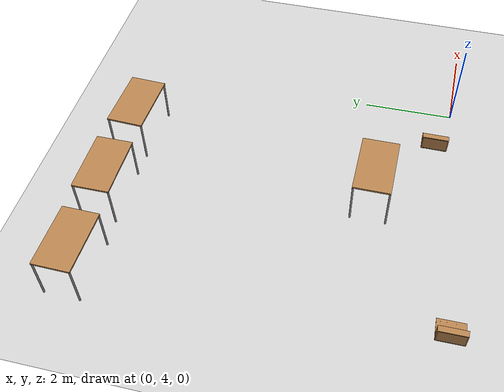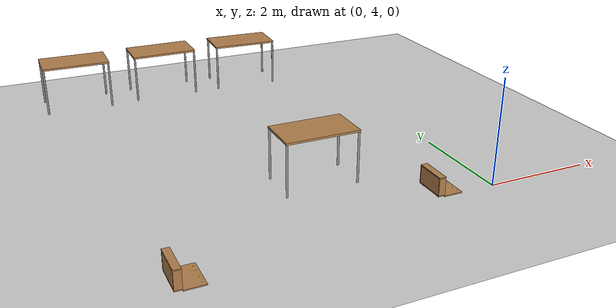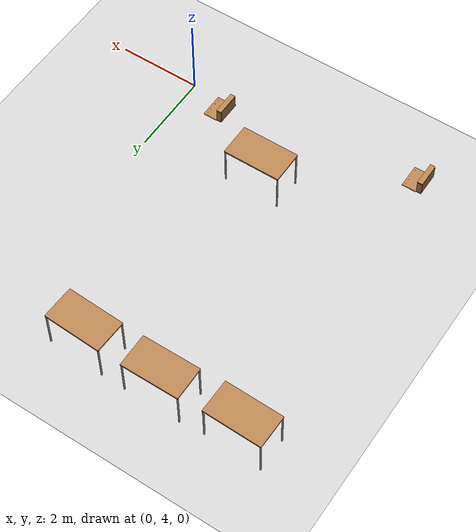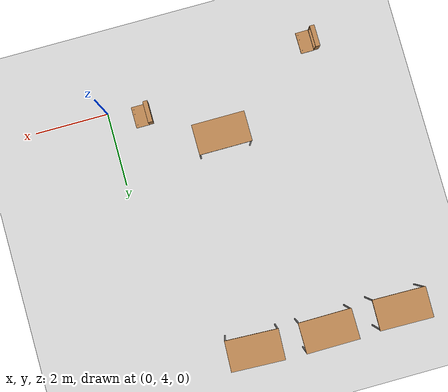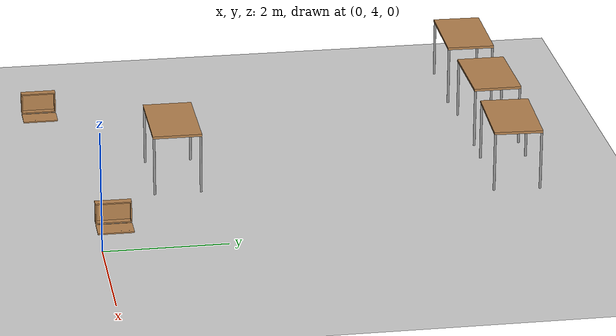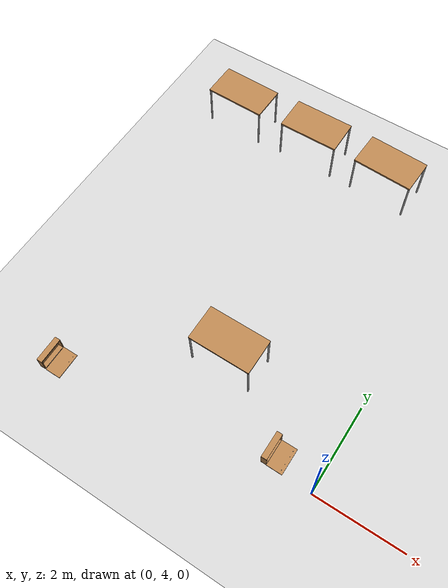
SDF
<sdf version="1.6">
 <world name="default">
  <model name="ground_plane">
   <static>1</static>
   <link name="link">
    <collision name="collision">
     <geometry><plane><normal>0 0 1</normal><size>100 100</size></plane></geometry>
     <surface><friction><ode><mu>100</mu><mu2>50</mu2></ode></friction></surface>
    </collision>
    <visual name="visual">
     <cast_shadows>0</cast_shadows>
     <geometry><plane><normal>0 0 1</normal><size>100 100</size></plane></geometry>
     <material>
      <script><uri>file://media/materials/scripts/gazebo.material</uri><name>Gazebo/Grey</name></script>
     </material>
    </visual>
   </link>
  </model>
  <model name="table_2">
   <static>0</static>
   <link name="link">
    <collision name="surface">
     <pose>0 0 1 0 -0 0</pose>
     <geometry><box><size>1.5 0.8 0.03</size></box></geometry>
     <surface><friction><ode><mu>0.6</mu><mu2>0.6</mu2></ode></friction></surface>
    </collision>
    <visual name="visual1">
     <pose>0 0 1 0 -0 0</pose>
     <geometry><box><size>1.4 0.8 0.04</size></box></geometry>
     <material>
      <script><uri>file://media/materials/scripts/gazebo.material</uri><name>Gazebo/Wood</name></script>
     </material>
    </visual>
    <collision name="front_left_leg">
     <pose>0.68 0.38 0.5 0 -0 0</pose>
     <geometry><cylinder><radius>0.02</radius><length>1</length></cylinder></geometry>
    </collision>
    <visual name="front_left_leg">
     <pose>0.68 0.38 0.5 0 -0 0</pose>
     <geometry><cylinder><radius>0.02</radius><length>1</length></cylinder></geometry>
     <material>
      <script><uri>file://media/materials/scripts/gazebo.material</uri><name>Gazebo/Grey</name></script>
     </material>
    </visual>
    <collision name="front_right_leg">
     <pose>0.68 -0.38 0.5 0 -0 0</pose>
     <geometry><cylinder><radius>0.02</radius><length>1</length></cylinder></geometry>
    </collision>
    <visual name="front_right_leg">
     <pose>0.68 -0.38 0.5 0 -0 0</pose>
     <geometry><cylinder><radius>0.02</radius><length>1</length></cylinder></geometry>
     <material>
      <script><uri>file://media/materials/scripts/gazebo.material</uri><name>Gazebo/Grey</name></script>
     </material>
    </visual>
    <collision name="back_right_leg">
     <pose>-0.68 -0.38 0.5 0 -0 0</pose>
     <geometry><cylinder><radius>0.02</radius><length>1</length></cylinder></geometry>
    </collision>
    <visual name="back_right_leg">
     <pose>-0.68 -0.38 0.5 0 -0 0</pose>
     <geometry><cylinder><radius>0.02</radius><length>1</length></cylinder></geometry>
     <material>
      <script><uri>file://media/materials/scripts/gazebo.material</uri><name>Gazebo/Grey</name></script>
     </material>
    </visual>
    <collision name="back_left_leg">
     <pose>-0.68 0.38 0.5 0 -0 0</pose>
     <geometry><cylinder><radius>0.02</radius><length>1</length></cylinder></geometry>
    </collision>
    <visual name="back_left_leg">
     <pose>-0.68 0.38 0.5 0 -0 0</pose>
     <geometry><cylinder><radius>0.02</radius><length>1</length></cylinder></geometry>
     <material>
      <script><uri>file://media/materials/scripts/gazebo.material</uri><name>Gazebo/Grey</name></script>
     </material>
    </visual>
    <inertial>
     <inertia><ixx>1</ixx><ixy>0</ixy><ixz>0</ixz><iyy>1</iyy><iyz>0</iyz><izz>1</izz></inertia>
     <mass>1</mass>
    </inertial>
   </link>
   <pose>-2.12696 10.9703 -1e-06 1e-06 -0 -0.043237</pose>
  </model>
  <model name="table_3">
   <static>0</static>
   <link name="link">
    <collision name="surface">
     <pose>0 0 1 0 -0 0</pose>
     <geometry><box><size>1.5 0.8 0.03</size></box></geometry>
     <surface><friction><ode><mu>0.6</mu><mu2>0.6</mu2></ode></friction></surface>
    </collision>
    <visual name="visual1">
     <pose>0 0 1 0 -0 0</pose>
     <geometry><box><size>1.4 0.8 0.04</size></box></geometry>
     <material>
      <script><uri>file://media/materials/scripts/gazebo.material</uri><name>Gazebo/Wood</name></script>
     </material>
    </visual>
    <collision name="front_left_leg">
     <pose>0.68 0.38 0.5 0 -0 0</pose>
     <geometry><cylinder><radius>0.02</radius><length>1</length></cylinder></geometry>
    </collision>
    <visual name="front_left_leg">
     <pose>0.68 0.38 0.5 0 -0 0</pose>
     <geometry><cylinder><radius>0.02</radius><length>1</length></cylinder></geometry>
     <material>
      <script><uri>file://media/materials/scripts/gazebo.material</uri><name>Gazebo/Grey</name></script>
     </material>
    </visual>
    <collision name="front_right_leg">
     <pose>0.68 -0.38 0.5 0 -0 0</pose>
     <geometry><cylinder><radius>0.02</radius><length>1</length></cylinder></geometry>
    </collision>
    <visual name="front_right_leg">
     <pose>0.68 -0.38 0.5 0 -0 0</pose>
     <geometry><cylinder><radius>0.02</radius><length>1</length></cylinder></geometry>
     <material>
      <script><uri>file://media/materials/scripts/gazebo.material</uri><name>Gazebo/Grey</name></script>
     </material>
    </visual>
    <collision name="back_right_leg">
     <pose>-0.68 -0.38 0.5 0 -0 0</pose>
     <geometry><cylinder><radius>0.02</radius><length>1</length></cylinder></geometry>
    </collision>
    <visual name="back_right_leg">
     <pose>-0.68 -0.38 0.5 0 -0 0</pose>
     <geometry><cylinder><radius>0.02</radius><length>1</length></cylinder></geometry>
     <material>
      <script><uri>file://media/materials/scripts/gazebo.material</uri><name>Gazebo/Grey</name></script>
     </material>
    </visual>
    <collision name="back_left_leg">
     <pose>-0.68 0.38 0.5 0 -0 0</pose>
     <geometry><cylinder><radius>0.02</radius><length>1</length></cylinder></geometry>
    </collision>
    <visual name="back_left_leg">
     <pose>-0.68 0.38 0.5 0 -0 0</pose>
     <geometry><cylinder><radius>0.02</radius><length>1</length></cylinder></geometry>
     <material>
      <script><uri>file://media/materials/scripts/gazebo.material</uri><name>Gazebo/Grey</name></script>
     </material>
    </visual>
    <inertial>
     <inertia><ixx>1</ixx><ixy>0</ixy><ixz>0</ixz><iyy>1</iyy><iyz>0</iyz><izz>1</izz></inertia>
     <mass>1</mass>
    </inertial>
   </link>
   <pose>-4.05351 11.0035 -8e-06 1e-06 -0 0.005047</pose>
  </model>
  <model name="table_5_clone_1">
   <static>0</static>
   <link name="link">
    <collision name="surface">
     <pose>0 0 1 0 -0 0</pose>
     <geometry><box><size>1.5 0.8 0.03</size></box></geometry>
     <surface><friction><ode><mu>0.6</mu><mu2>0.6</mu2></ode></friction></surface>
    </collision>
    <visual name="visual1">
     <pose>0 0 1 0 -0 0</pose>
     <geometry><box><size>1.4 0.8 0.04</size></box></geometry>
     <material>
      <script><uri>file://media/materials/scripts/gazebo.material</uri><name>Gazebo/Wood</name></script>
     </material>
    </visual>
    <collision name="front_left_leg">
     <pose>0.68 0.38 0.5 0 -0 0</pose>
     <geometry><cylinder><radius>0.02</radius><length>1</length></cylinder></geometry>
    </collision>
    <visual name="front_left_leg">
     <pose>0.68 0.38 0.5 0 -0 0</pose>
     <geometry><cylinder><radius>0.02</radius><length>1</length></cylinder></geometry>
     <material>
      <script><uri>file://media/materials/scripts/gazebo.material</uri><name>Gazebo/Grey</name></script>
     </material>
    </visual>
    <collision name="front_right_leg">
     <pose>0.68 -0.38 0.5 0 -0 0</pose>
     <geometry><cylinder><radius>0.02</radius><length>1</length></cylinder></geometry>
    </collision>
    <visual name="front_right_leg">
     <pose>0.68 -0.38 0.5 0 -0 0</pose>
     <geometry><cylinder><radius>0.02</radius><length>1</length></cylinder></geometry>
     <material>
      <script><uri>file://media/materials/scripts/gazebo.material</uri><name>Gazebo/Grey</name></script>
     </material>
    </visual>
    <collision name="back_right_leg">
     <pose>-0.68 -0.38 0.5 0 -0 0</pose>
     <geometry><cylinder><radius>0.02</radius><length>1</length></cylinder></geometry>
    </collision>
    <visual name="back_right_leg">
     <pose>-0.68 -0.38 0.5 0 -0 0</pose>
     <geometry><cylinder><radius>0.02</radius><length>1</length></cylinder></geometry>
     <material>
      <script><uri>file://media/materials/scripts/gazebo.material</uri><name>Gazebo/Grey</name></script>
     </material>
    </visual>
    <collision name="back_left_leg">
     <pose>-0.68 0.38 0.5 0 -0 0</pose>
     <geometry><cylinder><radius>0.02</radius><length>1</length></cylinder></geometry>
    </collision>
    <visual name="back_left_leg">
     <pose>-0.68 0.38 0.5 0 -0 0</pose>
     <geometry><cylinder><radius>0.02</radius><length>1</length></cylinder></geometry>
     <material>
      <script><uri>file://media/materials/scripts/gazebo.material</uri><name>Gazebo/Grey</name></script>
     </material>
    </visual>
    <inertial>
     <inertia><ixx>1</ixx><ixy>0</ixy><ixz>0</ixz><iyy>1</iyy><iyz>0</iyz><izz>1</izz></inertia>
     <mass>1</mass>
    </inertial>
   </link>
   <pose>-5.99949 10.9615 -8e-06 0 -2e-06 -0.017303</pose>
  </model>
  <model name="wooden_case">
   <link name="base">
    <pose>0 0 0.024 0 -0 0</pose>
    <inertial>
     <pose>-0.022184 0 0.171592 0 -0 0</pose>
     <mass>3.96264</mass>
     <inertia>
      <ixx>0.213536</ixx>
      <ixy>0</ixy>
      <ixz>0.000779377</ixz>
      <iyy>0.0708943</iyy>
      <iyz>0</iyz>
      <izz>0.154604</izz>
     </inertia>
    </inertial>
    <collision name="collision_back">
     <pose>-0.053975 0 0.1778 0 -0 0</pose>
     <geometry><box><size>0.01905 0.5461 0.3175</size></box></geometry>
     <surface>
      <contact>
       <poissons_ratio>0.347</poissons_ratio>
       <elastic_modulus>8.8e+09</elastic_modulus>
       <ode><kp>100000</kp><kd>100</kd><max_vel>100</max_vel><min_depth>0.001</min_depth></ode>
      </contact>
      <friction>
       <torsional>
        <coefficient>1</coefficient>
        <use_patch_radius>0</use_patch_radius>
        <surface_radius>0.01</surface_radius>
       </torsional>
      </friction>
     </surface>
    </collision>
    <visual name="visual_back">
     <pose>-0.053975 0 0.1778 0 -0 0</pose>
     <geometry><box><size>0.01905 0.5461 0.3175</size></box></geometry>
     <material>
      <script><uri>file://media/materials/scripts/gazebo.material</uri><name>Gazebo/Wood</name></script>
     </material>
    </visual>
    <collision name="collision_bottom">
     <pose>0 0 0.009525 0 -0 0</pose>
     <geometry><box><size>0.127 0.5842 0.01905</size></box></geometry>
     <surface>
      <contact>
       <poissons_ratio>0.347</poissons_ratio>
       <elastic_modulus>8.8e+09</elastic_modulus>
       <ode><kp>100000</kp><kd>100</kd><max_vel>100</max_vel><min_depth>0.001</min_depth></ode>
      </contact>
      <friction>
       <torsional>
        <coefficient>1</coefficient>
        <use_patch_radius>0</use_patch_radius>
        <surface_radius>0.01</surface_radius>
       </torsional>
      </friction>
     </surface>
    </collision>
    <visual name="visual_bottom">
     <pose>0 0 0.009525 0 -0 0</pose>
     <geometry><box><size>0.127 0.5842 0.01905</size></box></geometry>
     <material>
      <script><uri>file://media/materials/scripts/gazebo.material</uri><name>Gazebo/Wood</name></script>
     </material>
    </visual>
    <collision name="collision_top">
     <pose>0 0 0.346075 0 -0 0</pose>
     <geometry><box><size>0.127 0.5842 0.01905</size></box></geometry>
     <surface>
      <contact>
       <poissons_ratio>0.347</poissons_ratio>
       <elastic_modulus>8.8e+09</elastic_modulus>
       <ode><kp>100000</kp><kd>100</kd><max_vel>100</max_vel><min_depth>0.001</min_depth></ode>
      </contact>
      <friction>
       <torsional>
        <coefficient>1</coefficient>
        <use_patch_radius>0</use_patch_radius>
        <surface_radius>0.01</surface_radius>
       </torsional>
      </friction>
     </surface>
    </collision>
    <visual name="visual_top">
     <pose>0 0 0.346075 0 -0 0</pose>
     <geometry><box><size>0.127 0.5842 0.01905</size></box></geometry>
     <material>
      <script><uri>file://media/materials/scripts/gazebo.material</uri><name>Gazebo/Wood</name></script>
     </material>
    </visual>
    <collision name="collision_left">
     <pose>0 -0.282575 0.1778 0 -0 0</pose>
     <geometry><box><size>0.127 0.01905 0.3175</size></box></geometry>
     <surface>
      <contact>
       <poissons_ratio>0.347</poissons_ratio>
       <elastic_modulus>8.8e+09</elastic_modulus>
       <ode><kp>100000</kp><kd>100</kd><max_vel>100</max_vel><min_depth>0.001</min_depth></ode>
      </contact>
      <friction>
       <torsional>
        <coefficient>1</coefficient>
        <use_patch_radius>0</use_patch_radius>
        <surface_radius>0.01</surface_radius>
       </torsional>
      </friction>
     </surface>
    </collision>
    <visual name="visual_left">
     <pose>0 -0.282575 0.1778 0 -0 0</pose>
     <geometry><box><size>0.127 0.01905 0.3175</size></box></geometry>
     <material>
      <script><uri>file://media/materials/scripts/gazebo.material</uri><name>Gazebo/Wood</name></script>
     </material>
    </visual>
    <collision name="collision_right">
     <pose>0 0.282575 0.1778 0 -0 0</pose>
     <geometry><box><size>0.127 0.01905 0.3175</size></box></geometry>
     <surface>
      <contact>
       <poissons_ratio>0.347</poissons_ratio>
       <elastic_modulus>8.8e+09</elastic_modulus>
       <ode><kp>100000</kp><kd>100</kd><max_vel>100</max_vel><min_depth>0.001</min_depth></ode>
      </contact>
      <friction>
       <torsional>
        <coefficient>1</coefficient>
        <use_patch_radius>0</use_patch_radius>
        <surface_radius>0.01</surface_radius>
       </torsional>
      </friction>
     </surface>
    </collision>
    <visual name="visual_right">
     <pose>0 0.282575 0.1778 0 -0 0</pose>
     <geometry><box><size>0.127 0.01905 0.3175</size></box></geometry>
     <material>
      <script><uri>file://media/materials/scripts/gazebo.material</uri><name>Gazebo/Wood</name></script>
     </material>
    </visual>
    <collision name="collision_block_left">
     <pose>0.0095 -0.2151 -0.012 0 -0 0</pose>
     <geometry><box><size>0.108 0.05 0.024</size></box></geometry>
     <surface>
      <contact>
       <poissons_ratio>0.347</poissons_ratio>
       <elastic_modulus>8.8e+09</elastic_modulus>
       <ode><kp>100000</kp><kd>100</kd><max_vel>100</max_vel><min_depth>0.001</min_depth></ode>
      </contact>
      <friction>
       <torsional>
        <coefficient>1</coefficient>
        <use_patch_radius>0</use_patch_radius>
        <surface_radius>0.01</surface_radius>
       </torsional>
      </friction>
     </surface>
    </collision>
    <visual name="visual_block_left">
     <pose>0.0095 -0.2151 -0.012 0 -0 0</pose>
     <geometry><box><size>0.108 0.05 0.024</size></box></geometry>
     <material>
      <script><uri>file://media/materials/scripts/gazebo.material</uri><name>Gazebo/Wood</name></script>
     </material>
    </visual>
    <collision name="collision_block_right">
     <pose>0.0095 0.2151 -0.012 0 -0 0</pose>
     <geometry><box><size>0.108 0.05 0.024</size></box></geometry>
     <surface>
      <contact>
       <poissons_ratio>0.347</poissons_ratio>
       <elastic_modulus>8.8e+09</elastic_modulus>
       <ode><kp>100000</kp><kd>100</kd><max_vel>100</max_vel><min_depth>0.001</min_depth></ode>
      </contact>
      <friction>
       <torsional>
        <coefficient>1</coefficient>
        <use_patch_radius>0</use_patch_radius>
        <surface_radius>0.01</surface_radius>
       </torsional>
      </friction>
     </surface>
    </collision>
    <visual name="visual_block_right">
     <pose>0.0095 0.2151 -0.012 0 -0 0</pose>
     <geometry><box><size>0.108 0.05 0.024</size></box></geometry>
     <material>
      <script><uri>file://media/materials/scripts/gazebo.material</uri><name>Gazebo/Wood</name></script>
     </material>
    </visual>
   </link>
   <link name="lid">
    <pose>0.243775 0 0.009525 0 -0 0</pose>
    <inertial>
     <mass>1.97874</mass>
     <inertia>
      <ixx>0.0563367</ixx>
      <ixy>0</ixy>
      <ixz>0</ixz>
      <iyy>0.020911</iyy>
      <iyz>0</iyz>
      <izz>0.0771281</izz>
     </inertia>
    </inertial>
    <collision name="collision">
     <geometry><box><size>0.3556 0.5842 0.01905</size></box></geometry>
     <surface>
      <contact>
       <poissons_ratio>0.347</poissons_ratio>
       <elastic_modulus>8.8e+09</elastic_modulus>
       <ode><kp>100000</kp><kd>100</kd><max_vel>100</max_vel><min_depth>0.001</min_depth></ode>
      </contact>
      <friction>
       <torsional>
        <coefficient>1</coefficient>
        <use_patch_radius>0</use_patch_radius>
        <surface_radius>0.01</surface_radius>
       </torsional>
      </friction>
     </surface>
    </collision>
    <visual name="visual">
     <geometry><box><size>0.3556 0.5842 0.01905</size></box></geometry>
     <material>
      <script><uri>file://media/materials/scripts/gazebo.material</uri><name>Gazebo/Wood</name></script>
     </material>
    </visual>
    <visual name="tee_nut_1">
     <pose>0.122 -0.216 0 0 -0 0</pose>
     <geometry><cylinder><radius>0.00635</radius><length>0.0192405</length></cylinder></geometry>
     <material>
      <script><uri>file://media/materials/scripts/gazebo.material</uri><name>Gazebo/Grey</name></script>
     </material>
    </visual>
    <visual name="tee_nut_2">
     <pose>0.122 -0.088 0 0 -0 0</pose>
     <geometry><cylinder><radius>0.00635</radius><length>0.0192405</length></cylinder></geometry>
     <material>
      <script><uri>file://media/materials/scripts/gazebo.material</uri><name>Gazebo/Grey</name></script>
     </material>
    </visual>
    <visual name="tee_nut_3">
     <pose>0.122 0.088 0 0 -0 0</pose>
     <geometry><cylinder><radius>0.00635</radius><length>0.0192405</length></cylinder></geometry>
     <material>
      <script><uri>file://media/materials/scripts/gazebo.material</uri><name>Gazebo/Grey</name></script>
     </material>
    </visual>
    <visual name="tee_nut_4">
     <pose>0.122 0.216 0 0 -0 0</pose>
     <geometry><cylinder><radius>0.00635</radius><length>0.0192405</length></cylinder></geometry>
     <material>
      <script><uri>file://media/materials/scripts/gazebo.material</uri><name>Gazebo/Grey</name></script>
     </material>
    </visual>
   </link>
   <joint name="lid_hinge" type="revolute">
    <pose>-0.1778 0 0.01905 0 -0 0</pose>
    <parent>base</parent>
    <child>lid</child>
    <axis>
     <xyz>0 1 0</xyz>
     <limit><upper>0.523599</upper><lower>-1.5708</lower></limit>
     <use_parent_model_frame>0</use_parent_model_frame>
     <dynamics><spring_reference>0</spring_reference><spring_stiffness>0</spring_stiffness></dynamics>
    </axis>
   </joint>
   <pose>-5.90752 3.50878 -0.001057 0 -0.000424 0.007275</pose>
  </model>
  <model name="wooden_case_0">
   <link name="base">
    <pose>0 0 0.024 0 -0 0</pose>
    <inertial>
     <pose>-0.022184 0 0.171592 0 -0 0</pose>
     <mass>3.96264</mass>
     <inertia>
      <ixx>0.213536</ixx>
      <ixy>0</ixy>
      <ixz>0.000779377</ixz>
      <iyy>0.0708943</iyy>
      <iyz>0</iyz>
      <izz>0.154604</izz>
     </inertia>
    </inertial>
    <collision name="collision_back">
     <pose>-0.053975 0 0.1778 0 -0 0</pose>
     <geometry><box><size>0.01905 0.5461 0.3175</size></box></geometry>
     <surface>
      <contact>
       <poissons_ratio>0.347</poissons_ratio>
       <elastic_modulus>8.8e+09</elastic_modulus>
       <ode><kp>100000</kp><kd>100</kd><max_vel>100</max_vel><min_depth>0.001</min_depth></ode>
      </contact>
      <friction>
       <torsional>
        <coefficient>1</coefficient>
        <use_patch_radius>0</use_patch_radius>
        <surface_radius>0.01</surface_radius>
       </torsional>
      </friction>
     </surface>
    </collision>
    <visual name="visual_back">
     <pose>-0.053975 0 0.1778 0 -0 0</pose>
     <geometry><box><size>0.01905 0.5461 0.3175</size></box></geometry>
     <material>
      <script><uri>file://media/materials/scripts/gazebo.material</uri><name>Gazebo/Wood</name></script>
     </material>
    </visual>
    <collision name="collision_bottom">
     <pose>0 0 0.009525 0 -0 0</pose>
     <geometry><box><size>0.127 0.5842 0.01905</size></box></geometry>
     <surface>
      <contact>
       <poissons_ratio>0.347</poissons_ratio>
       <elastic_modulus>8.8e+09</elastic_modulus>
       <ode><kp>100000</kp><kd>100</kd><max_vel>100</max_vel><min_depth>0.001</min_depth></ode>
      </contact>
      <friction>
       <torsional>
        <coefficient>1</coefficient>
        <use_patch_radius>0</use_patch_radius>
        <surface_radius>0.01</surface_radius>
       </torsional>
      </friction>
     </surface>
    </collision>
    <visual name="visual_bottom">
     <pose>0 0 0.009525 0 -0 0</pose>
     <geometry><box><size>0.127 0.5842 0.01905</size></box></geometry>
     <material>
      <script><uri>file://media/materials/scripts/gazebo.material</uri><name>Gazebo/Wood</name></script>
     </material>
    </visual>
    <collision name="collision_top">
     <pose>0 0 0.346075 0 -0 0</pose>
     <geometry><box><size>0.127 0.5842 0.01905</size></box></geometry>
     <surface>
      <contact>
       <poissons_ratio>0.347</poissons_ratio>
       <elastic_modulus>8.8e+09</elastic_modulus>
       <ode><kp>100000</kp><kd>100</kd><max_vel>100</max_vel><min_depth>0.001</min_depth></ode>
      </contact>
      <friction>
       <torsional>
        <coefficient>1</coefficient>
        <use_patch_radius>0</use_patch_radius>
        <surface_radius>0.01</surface_radius>
       </torsional>
      </friction>
     </surface>
    </collision>
    <visual name="visual_top">
     <pose>0 0 0.346075 0 -0 0</pose>
     <geometry><box><size>0.127 0.5842 0.01905</size></box></geometry>
     <material>
      <script><uri>file://media/materials/scripts/gazebo.material</uri><name>Gazebo/Wood</name></script>
     </material>
    </visual>
    <collision name="collision_left">
     <pose>0 -0.282575 0.1778 0 -0 0</pose>
     <geometry><box><size>0.127 0.01905 0.3175</size></box></geometry>
     <surface>
      <contact>
       <poissons_ratio>0.347</poissons_ratio>
       <elastic_modulus>8.8e+09</elastic_modulus>
       <ode><kp>100000</kp><kd>100</kd><max_vel>100</max_vel><min_depth>0.001</min_depth></ode>
      </contact>
      <friction>
       <torsional>
        <coefficient>1</coefficient>
        <use_patch_radius>0</use_patch_radius>
        <surface_radius>0.01</surface_radius>
       </torsional>
      </friction>
     </surface>
    </collision>
    <visual name="visual_left">
     <pose>0 -0.282575 0.1778 0 -0 0</pose>
     <geometry><box><size>0.127 0.01905 0.3175</size></box></geometry>
     <material>
      <script><uri>file://media/materials/scripts/gazebo.material</uri><name>Gazebo/Wood</name></script>
     </material>
    </visual>
    <collision name="collision_right">
     <pose>0 0.282575 0.1778 0 -0 0</pose>
     <geometry><box><size>0.127 0.01905 0.3175</size></box></geometry>
     <surface>
      <contact>
       <poissons_ratio>0.347</poissons_ratio>
       <elastic_modulus>8.8e+09</elastic_modulus>
       <ode><kp>100000</kp><kd>100</kd><max_vel>100</max_vel><min_depth>0.001</min_depth></ode>
      </contact>
      <friction>
       <torsional>
        <coefficient>1</coefficient>
        <use_patch_radius>0</use_patch_radius>
        <surface_radius>0.01</surface_radius>
       </torsional>
      </friction>
     </surface>
    </collision>
    <visual name="visual_right">
     <pose>0 0.282575 0.1778 0 -0 0</pose>
     <geometry><box><size>0.127 0.01905 0.3175</size></box></geometry>
     <material>
      <script><uri>file://media/materials/scripts/gazebo.material</uri><name>Gazebo/Wood</name></script>
     </material>
    </visual>
    <collision name="collision_block_left">
     <pose>0.0095 -0.2151 -0.012 0 -0 0</pose>
     <geometry><box><size>0.108 0.05 0.024</size></box></geometry>
     <surface>
      <contact>
       <poissons_ratio>0.347</poissons_ratio>
       <elastic_modulus>8.8e+09</elastic_modulus>
       <ode><kp>100000</kp><kd>100</kd><max_vel>100</max_vel><min_depth>0.001</min_depth></ode>
      </contact>
      <friction>
       <torsional>
        <coefficient>1</coefficient>
        <use_patch_radius>0</use_patch_radius>
        <surface_radius>0.01</surface_radius>
       </torsional>
      </friction>
     </surface>
    </collision>
    <visual name="visual_block_left">
     <pose>0.0095 -0.2151 -0.012 0 -0 0</pose>
     <geometry><box><size>0.108 0.05 0.024</size></box></geometry>
     <material>
      <script><uri>file://media/materials/scripts/gazebo.material</uri><name>Gazebo/Wood</name></script>
     </material>
    </visual>
    <collision name="collision_block_right">
     <pose>0.0095 0.2151 -0.012 0 -0 0</pose>
     <geometry><box><size>0.108 0.05 0.024</size></box></geometry>
     <surface>
      <contact>
       <poissons_ratio>0.347</poissons_ratio>
       <elastic_modulus>8.8e+09</elastic_modulus>
       <ode><kp>100000</kp><kd>100</kd><max_vel>100</max_vel><min_depth>0.001</min_depth></ode>
      </contact>
      <friction>
       <torsional>
        <coefficient>1</coefficient>
        <use_patch_radius>0</use_patch_radius>
        <surface_radius>0.01</surface_radius>
       </torsional>
      </friction>
     </surface>
    </collision>
    <visual name="visual_block_right">
     <pose>0.0095 0.2151 -0.012 0 -0 0</pose>
     <geometry><box><size>0.108 0.05 0.024</size></box></geometry>
     <material>
      <script><uri>file://media/materials/scripts/gazebo.material</uri><name>Gazebo/Wood</name></script>
     </material>
    </visual>
   </link>
   <link name="lid">
    <pose>0.243775 0 0.009525 0 -0 0</pose>
    <inertial>
     <mass>1.97874</mass>
     <inertia>
      <ixx>0.0563367</ixx>
      <ixy>0</ixy>
      <ixz>0</ixz>
      <iyy>0.020911</iyy>
      <iyz>0</iyz>
      <izz>0.0771281</izz>
     </inertia>
    </inertial>
    <collision name="collision">
     <geometry><box><size>0.3556 0.5842 0.01905</size></box></geometry>
     <surface>
      <contact>
       <poissons_ratio>0.347</poissons_ratio>
       <elastic_modulus>8.8e+09</elastic_modulus>
       <ode><kp>100000</kp><kd>100</kd><max_vel>100</max_vel><min_depth>0.001</min_depth></ode>
      </contact>
      <friction>
       <torsional>
        <coefficient>1</coefficient>
        <use_patch_radius>0</use_patch_radius>
        <surface_radius>0.01</surface_radius>
       </torsional>
      </friction>
     </surface>
    </collision>
    <visual name="visual">
     <geometry><box><size>0.3556 0.5842 0.01905</size></box></geometry>
     <material>
      <script><uri>file://media/materials/scripts/gazebo.material</uri><name>Gazebo/Wood</name></script>
     </material>
    </visual>
    <visual name="tee_nut_1">
     <pose>0.122 -0.216 0 0 -0 0</pose>
     <geometry><cylinder><radius>0.00635</radius><length>0.0192405</length></cylinder></geometry>
     <material>
      <script><uri>file://media/materials/scripts/gazebo.material</uri><name>Gazebo/Grey</name></script>
     </material>
    </visual>
    <visual name="tee_nut_2">
     <pose>0.122 -0.088 0 0 -0 0</pose>
     <geometry><cylinder><radius>0.00635</radius><length>0.0192405</length></cylinder></geometry>
     <material>
      <script><uri>file://media/materials/scripts/gazebo.material</uri><name>Gazebo/Grey</name></script>
     </material>
    </visual>
    <visual name="tee_nut_3">
     <pose>0.122 0.088 0 0 -0 0</pose>
     <geometry><cylinder><radius>0.00635</radius><length>0.0192405</length></cylinder></geometry>
     <material>
      <script><uri>file://media/materials/scripts/gazebo.material</uri><name>Gazebo/Grey</name></script>
     </material>
    </visual>
    <visual name="tee_nut_4">
     <pose>0.122 0.216 0 0 -0 0</pose>
     <geometry><cylinder><radius>0.00635</radius><length>0.0192405</length></cylinder></geometry>
     <material>
      <script><uri>file://media/materials/scripts/gazebo.material</uri><name>Gazebo/Grey</name></script>
     </material>
    </visual>
   </link>
   <joint name="lid_hinge" type="revolute">
    <pose>-0.1778 0 0.01905 0 -0 0</pose>
    <parent>base</parent>
    <child>lid</child>
    <axis>
     <xyz>0 1 0</xyz>
     <limit><upper>0.523599</upper><lower>-1.5708</lower></limit>
     <use_parent_model_frame>0</use_parent_model_frame>
     <dynamics><spring_reference>0</spring_reference><spring_stiffness>0</spring_stiffness></dynamics>
    </axis>
   </joint>
   <pose>-1.07257 4.28733 -0.001057 0 -0.000429 0</pose>
  </model>
  <model name="table">
   <static>0</static>
   <link name="link">
    <collision name="surface">
     <pose>0 0 1 0 -0 0</pose>
     <geometry><box><size>1.5 0.8 0.03</size></box></geometry>
     <surface><friction><ode><mu>0.6</mu><mu2>0.6</mu2></ode></friction></surface>
    </collision>
    <visual name="visual1">
     <pose>0 0 1 0 -0 0</pose>
     <geometry><box><size>1.4 0.8 0.04</size></box></geometry>
     <material>
      <script><uri>file://media/materials/scripts/gazebo.material</uri><name>Gazebo/Wood</name></script>
     </material>
    </visual>
    <collision name="front_left_leg">
     <pose>0.68 0.38 0.5 0 -0 0</pose>
     <geometry><cylinder><radius>0.02</radius><length>1</length></cylinder></geometry>
    </collision>
    <visual name="front_left_leg">
     <pose>0.68 0.38 0.5 0 -0 0</pose>
     <geometry><cylinder><radius>0.02</radius><length>1</length></cylinder></geometry>
     <material>
      <script><uri>file://media/materials/scripts/gazebo.material</uri><name>Gazebo/Grey</name></script>
     </material>
    </visual>
    <collision name="front_right_leg">
     <pose>0.68 -0.38 0.5 0 -0 0</pose>
     <geometry><cylinder><radius>0.02</radius><length>1</length></cylinder></geometry>
    </collision>
    <visual name="front_right_leg">
     <pose>0.68 -0.38 0.5 0 -0 0</pose>
     <geometry><cylinder><radius>0.02</radius><length>1</length></cylinder></geometry>
     <material>
      <script><uri>file://media/materials/scripts/gazebo.material</uri><name>Gazebo/Grey</name></script>
     </material>
    </visual>
    <collision name="back_right_leg">
     <pose>-0.68 -0.38 0.5 0 -0 0</pose>
     <geometry><cylinder><radius>0.02</radius><length>1</length></cylinder></geometry>
    </collision>
    <visual name="back_right_leg">
     <pose>-0.68 -0.38 0.5 0 -0 0</pose>
     <geometry><cylinder><radius>0.02</radius><length>1</length></cylinder></geometry>
     <material>
      <script><uri>file://media/materials/scripts/gazebo.material</uri><name>Gazebo/Grey</name></script>
     </material>
    </visual>
    <collision name="back_left_leg">
     <pose>-0.68 0.38 0.5 0 -0 0</pose>
     <geometry><cylinder><radius>0.02</radius><length>1</length></cylinder></geometry>
    </collision>
    <visual name="back_left_leg">
     <pose>-0.68 0.38 0.5 0 -0 0</pose>
     <geometry><cylinder><radius>0.02</radius><length>1</length></cylinder></geometry>
     <material>
      <script><uri>file://media/materials/scripts/gazebo.material</uri><name>Gazebo/Grey</name></script>
     </material>
    </visual>
    <inertial>
     <inertia><ixx>1</ixx><ixy>0</ixy><ixz>0</ixz><iyy>1</iyy><iyz>0</iyz><izz>1</izz></inertia>
     <mass>1</mass>
    </inertial>
   </link>
   <pose>-2.79287 5.45341 -1e-06 -1e-06 1e-06 0</pose>
  </model>
 </world>
</sdf>
